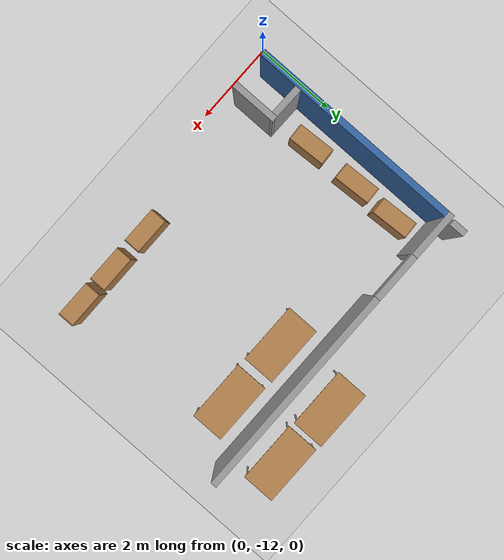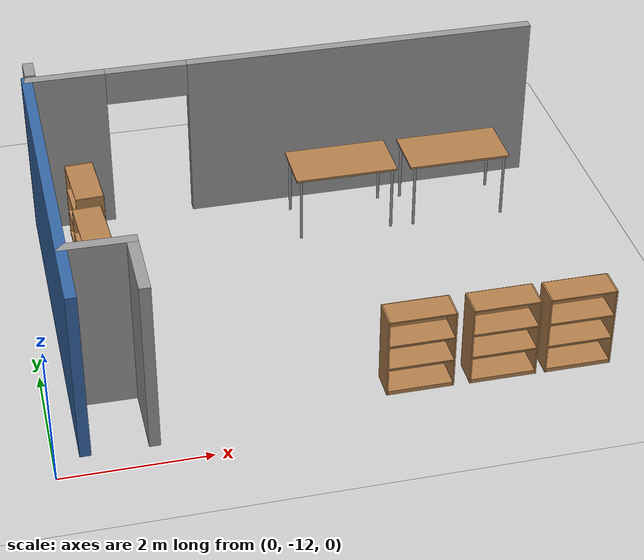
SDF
<sdf version="1.7">
 <world name="default">
  <model name="ground_plane">
   <static>1</static>
   <link name="link">
    <collision name="collision">
     <geometry><plane><normal>0 0 1</normal><size>100 100</size></plane></geometry>
     <surface>
      <contact><collide_bitmask>65535</collide_bitmask></contact>
      <friction><ode><mu>100</mu><mu2>50</mu2></ode></friction>
     </surface>
    </collision>
    <visual name="visual">
     <cast_shadows>0</cast_shadows>
     <geometry><plane><normal>0 0 1</normal><size>100 100</size></plane></geometry>
     <material>
      <script><uri>file://media/materials/scripts/gazebo.material</uri><name>Gazebo/Grey</name></script>
     </material>
    </visual>
   </link>
  </model>
  <model name="office_indoor_centered">
   <pose>8.45773 -9.64315 0 0 -0 0</pose>
   <link name="Wall_119">
    <collision name="Wall_119_Collision">
     <geometry><box><size>0.364986 0.15 2.5</size></box></geometry>
     <pose>0 0 1.25 0 -0 0</pose>
    </collision>
    <visual name="Wall_119_Visual">
     <pose>0 0 1.25 0 -0 0</pose>
     <geometry><box><size>0.364986 0.15 2.5</size></box></geometry>
     <material>
      <script><uri>file://media/materials/scripts/gazebo.material</uri><name>Gazebo/Grey</name></script>
      <ambient>1 1 1 1</ambient>
     </material>
     <meta><layer>0</layer></meta>
    </visual>
    <pose>-7.99429 3.45026 0 0 -0 -1.5608</pose>
   </link>
   <link name="Wall_37">
    <pose>-4.37835 3.15504 0 0 -0 0</pose>
    <visual name="Wall_37_Visual_0">
     <pose>-3.16264 0 1.25 0 -0 0</pose>
     <geometry><box><size>1.17472 0.15 2.5</size></box></geometry>
     <material>
      <script><uri>file://media/materials/scripts/gazebo.material</uri><name>Gazebo/Grey</name></script>
      <ambient>1 1 1 1</ambient>
     </material>
     <meta><layer>0</layer></meta>
    </visual>
    <collision name="Wall_37_Collision_0">
     <geometry><box><size>1.17472 0.15 2.5</size></box></geometry>
     <pose>-3.16264 0 1.25 0 -0 0</pose>
    </collision>
    <visual name="Wall_37_Visual_1">
     <pose>1.17415 0 1.25 0 -0 0</pose>
     <geometry><box><size>5.15171 0.15 2.5</size></box></geometry>
     <material>
      <script><uri>file://media/materials/scripts/gazebo.material</uri><name>Gazebo/Grey</name></script>
      <ambient>1 1 1 1</ambient>
     </material>
     <meta><layer>0</layer></meta>
    </visual>
    <collision name="Wall_37_Collision_1">
     <geometry><box><size>5.15171 0.15 2.5</size></box></geometry>
     <pose>1.17415 0 1.25 0 -0 0</pose>
    </collision>
    <visual name="Wall_37_Visual_2">
     <pose>-1.98849 0 2.25 0 -0 0</pose>
     <geometry><box><size>1.17357 0.15 0.5</size></box></geometry>
     <material>
      <script><uri>file://media/materials/scripts/gazebo.material</uri><name>Gazebo/Grey</name></script>
      <ambient>1 1 1 1</ambient>
     </material>
     <meta><layer>0</layer></meta>
    </visual>
    <collision name="Wall_37_Collision_2">
     <geometry><box><size>1.17357 0.15 0.5</size></box></geometry>
     <pose>-1.98849 0 2.25 0 -0 0</pose>
    </collision>
   </link>
   <link name="Wall_41">
    <collision name="Wall_41_Collision">
     <geometry><box><size>5.25 0.15 2.5</size></box></geometry>
     <pose>0 0 1.25 0 -0 0</pose>
    </collision>
    <visual name="Wall_41_Visual">
     <pose>0 0 1.25 0 -0 0</pose>
     <geometry><box><size>5.25 0.15 2.5</size></box></geometry>
     <material>
      <script><uri>file://media/materials/scripts/gazebo.material</uri><name>Gazebo/Grey</name></script>
      <ambient>0.203922 0.396078 0.643137 1</ambient>
     </material>
     <meta><layer>0</layer></meta>
    </visual>
    <pose>-8.05354 0.605094 0 0 -0 -1.57087</pose>
   </link>
   <link name="Wall_51">
    <collision name="Wall_51_Collision">
     <geometry><box><size>1.12149 0.15 2.5</size></box></geometry>
     <pose>0 0 1.25 0 -0 0</pose>
    </collision>
    <visual name="Wall_51_Visual">
     <pose>0 0 1.25 0 -0 0</pose>
     <geometry><box><size>1.12149 0.15 2.5</size></box></geometry>
     <material>
      <script><uri>file://media/materials/scripts/gazebo.material</uri><name>Gazebo/Grey</name></script>
      <ambient>1 1 1 1</ambient>
     </material>
     <meta><layer>0</layer></meta>
    </visual>
    <pose>-7.1714 -1.46267 0 0 -0 1.5708</pose>
   </link>
   <link name="Wall_52">
    <collision name="Wall_52_Collision">
     <geometry><box><size>1.01742 0.15 2.5</size></box></geometry>
     <pose>0 0 1.25 0 -0 0</pose>
    </collision>
    <visual name="Wall_52_Visual">
     <pose>0 0 1.25 0 -0 0</pose>
     <geometry><box><size>1.01742 0.15 2.5</size></box></geometry>
     <material>
      <script><uri>file://media/materials/scripts/gazebo.material</uri><name>Gazebo/Grey</name></script>
      <ambient>1 1 1 1</ambient>
     </material>
     <meta><layer>0</layer></meta>
    </visual>
    <pose>-7.6051 -0.971145 0 0 -0 3.12826</pose>
   </link>
   <static>1</static>
  </model>
  <model name="table_20">
   <static>1</static>
   <link name="link">
    <collision name="surface">
     <pose>0 0 1 0 -0 0</pose>
     <geometry><box><size>1.5 0.8 0.03</size></box></geometry>
     <surface><friction><ode><mu>0.6</mu><mu2>0.6</mu2></ode></friction></surface>
    </collision>
    <visual name="visual1">
     <pose>0 0 1 0 -0 0</pose>
     <geometry><box><size>1.5 0.8 0.03</size></box></geometry>
     <material>
      <script><uri>file://media/materials/scripts/gazebo.material</uri><name>Gazebo/Wood</name></script>
     </material>
    </visual>
    <collision name="collision_front_left_leg">
     <pose>0.68 0.38 0.5 0 -0 0</pose>
     <geometry><cylinder><radius>0.02</radius><length>1</length></cylinder></geometry>
    </collision>
    <visual name="visual_front_left_leg">
     <pose>0.68 0.38 0.5 0 -0 0</pose>
     <geometry><cylinder><radius>0.02</radius><length>1</length></cylinder></geometry>
     <material>
      <script><uri>file://media/materials/scripts/gazebo.material</uri><name>Gazebo/Grey</name></script>
     </material>
    </visual>
    <collision name="collision_front_right_leg">
     <pose>0.68 -0.38 0.5 0 -0 0</pose>
     <geometry><cylinder><radius>0.02</radius><length>1</length></cylinder></geometry>
    </collision>
    <visual name="visual_front_right_leg">
     <pose>0.68 -0.38 0.5 0 -0 0</pose>
     <geometry><cylinder><radius>0.02</radius><length>1</length></cylinder></geometry>
     <material>
      <script><uri>file://media/materials/scripts/gazebo.material</uri><name>Gazebo/Grey</name></script>
     </material>
    </visual>
    <collision name="collision_back_right_leg">
     <pose>-0.68 -0.38 0.5 0 -0 0</pose>
     <geometry><cylinder><radius>0.02</radius><length>1</length></cylinder></geometry>
    </collision>
    <visual name="visual_back_right_leg">
     <pose>-0.68 -0.38 0.5 0 -0 0</pose>
     <geometry><cylinder><radius>0.02</radius><length>1</length></cylinder></geometry>
     <material>
      <script><uri>file://media/materials/scripts/gazebo.material</uri><name>Gazebo/Grey</name></script>
     </material>
    </visual>
    <collision name="collision_back_left_leg">
     <pose>-0.68 0.38 0.5 0 -0 0</pose>
     <geometry><cylinder><radius>0.02</radius><length>1</length></cylinder></geometry>
    </collision>
    <visual name="visual_back_left_leg">
     <pose>-0.68 0.38 0.5 0 -0 0</pose>
     <geometry><cylinder><radius>0.02</radius><length>1</length></cylinder></geometry>
     <material>
      <script><uri>file://media/materials/scripts/gazebo.material</uri><name>Gazebo/Grey</name></script>
     </material>
    </visual>
   </link>
   <pose>6.47913 -7.29137 0 0 -0 0</pose>
  </model>
  <model name="table_21">
   <static>1</static>
   <link name="link">
    <collision name="surface">
     <pose>0 0 1 0 -0 0</pose>
     <geometry><box><size>1.5 0.8 0.03</size></box></geometry>
     <surface><friction><ode><mu>0.6</mu><mu2>0.6</mu2></ode></friction></surface>
    </collision>
    <visual name="visual1">
     <pose>0 0 1 0 -0 0</pose>
     <geometry><box><size>1.5 0.8 0.03</size></box></geometry>
     <material>
      <script><uri>file://media/materials/scripts/gazebo.material</uri><name>Gazebo/Wood</name></script>
     </material>
    </visual>
    <collision name="collision_front_left_leg">
     <pose>0.68 0.38 0.5 0 -0 0</pose>
     <geometry><cylinder><radius>0.02</radius><length>1</length></cylinder></geometry>
    </collision>
    <visual name="visual_front_left_leg">
     <pose>0.68 0.38 0.5 0 -0 0</pose>
     <geometry><cylinder><radius>0.02</radius><length>1</length></cylinder></geometry>
     <material>
      <script><uri>file://media/materials/scripts/gazebo.material</uri><name>Gazebo/Grey</name></script>
     </material>
    </visual>
    <collision name="collision_front_right_leg">
     <pose>0.68 -0.38 0.5 0 -0 0</pose>
     <geometry><cylinder><radius>0.02</radius><length>1</length></cylinder></geometry>
    </collision>
    <visual name="visual_front_right_leg">
     <pose>0.68 -0.38 0.5 0 -0 0</pose>
     <geometry><cylinder><radius>0.02</radius><length>1</length></cylinder></geometry>
     <material>
      <script><uri>file://media/materials/scripts/gazebo.material</uri><name>Gazebo/Grey</name></script>
     </material>
    </visual>
    <collision name="collision_back_right_leg">
     <pose>-0.68 -0.38 0.5 0 -0 0</pose>
     <geometry><cylinder><radius>0.02</radius><length>1</length></cylinder></geometry>
    </collision>
    <visual name="visual_back_right_leg">
     <pose>-0.68 -0.38 0.5 0 -0 0</pose>
     <geometry><cylinder><radius>0.02</radius><length>1</length></cylinder></geometry>
     <material>
      <script><uri>file://media/materials/scripts/gazebo.material</uri><name>Gazebo/Grey</name></script>
     </material>
    </visual>
    <collision name="collision_back_left_leg">
     <pose>-0.68 0.38 0.5 0 -0 0</pose>
     <geometry><cylinder><radius>0.02</radius><length>1</length></cylinder></geometry>
    </collision>
    <visual name="visual_back_left_leg">
     <pose>-0.68 0.38 0.5 0 -0 0</pose>
     <geometry><cylinder><radius>0.02</radius><length>1</length></cylinder></geometry>
     <material>
      <script><uri>file://media/materials/scripts/gazebo.material</uri><name>Gazebo/Grey</name></script>
     </material>
    </visual>
   </link>
   <pose>4.78093 -7.27118 0 0 -0 0</pose>
  </model>
  <model name="table_24">
   <static>1</static>
   <link name="link">
    <collision name="surface">
     <pose>0 0 1 0 -0 0</pose>
     <geometry><box><size>1.5 0.8 0.03</size></box></geometry>
     <surface><friction><ode><mu>0.6</mu><mu2>0.6</mu2></ode></friction></surface>
    </collision>
    <visual name="visual1">
     <pose>0 0 1 0 -0 0</pose>
     <geometry><box><size>1.5 0.8 0.03</size></box></geometry>
     <material>
      <script><uri>file://media/materials/scripts/gazebo.material</uri><name>Gazebo/Wood</name></script>
     </material>
    </visual>
    <collision name="collision_front_left_leg">
     <pose>0.68 0.38 0.5 0 -0 0</pose>
     <geometry><cylinder><radius>0.02</radius><length>1</length></cylinder></geometry>
    </collision>
    <visual name="visual_front_left_leg">
     <pose>0.68 0.38 0.5 0 -0 0</pose>
     <geometry><cylinder><radius>0.02</radius><length>1</length></cylinder></geometry>
     <material>
      <script><uri>file://media/materials/scripts/gazebo.material</uri><name>Gazebo/Grey</name></script>
     </material>
    </visual>
    <collision name="collision_front_right_leg">
     <pose>0.68 -0.38 0.5 0 -0 0</pose>
     <geometry><cylinder><radius>0.02</radius><length>1</length></cylinder></geometry>
    </collision>
    <visual name="visual_front_right_leg">
     <pose>0.68 -0.38 0.5 0 -0 0</pose>
     <geometry><cylinder><radius>0.02</radius><length>1</length></cylinder></geometry>
     <material>
      <script><uri>file://media/materials/scripts/gazebo.material</uri><name>Gazebo/Grey</name></script>
     </material>
    </visual>
    <collision name="collision_back_right_leg">
     <pose>-0.68 -0.38 0.5 0 -0 0</pose>
     <geometry><cylinder><radius>0.02</radius><length>1</length></cylinder></geometry>
    </collision>
    <visual name="visual_back_right_leg">
     <pose>-0.68 -0.38 0.5 0 -0 0</pose>
     <geometry><cylinder><radius>0.02</radius><length>1</length></cylinder></geometry>
     <material>
      <script><uri>file://media/materials/scripts/gazebo.material</uri><name>Gazebo/Grey</name></script>
     </material>
    </visual>
    <collision name="collision_back_left_leg">
     <pose>-0.68 0.38 0.5 0 -0 0</pose>
     <geometry><cylinder><radius>0.02</radius><length>1</length></cylinder></geometry>
    </collision>
    <visual name="visual_back_left_leg">
     <pose>-0.68 0.38 0.5 0 -0 0</pose>
     <geometry><cylinder><radius>0.02</radius><length>1</length></cylinder></geometry>
     <material>
      <script><uri>file://media/materials/scripts/gazebo.material</uri><name>Gazebo/Grey</name></script>
     </material>
    </visual>
   </link>
   <pose>6.75369 -5.54528 0 0 -0 0</pose>
  </model>
  <model name="table_25">
   <static>1</static>
   <link name="link">
    <collision name="surface">
     <pose>0 0 1 0 -0 0</pose>
     <geometry><box><size>1.5 0.8 0.03</size></box></geometry>
     <surface><friction><ode><mu>0.6</mu><mu2>0.6</mu2></ode></friction></surface>
    </collision>
    <visual name="visual1">
     <pose>0 0 1 0 -0 0</pose>
     <geometry><box><size>1.5 0.8 0.03</size></box></geometry>
     <material>
      <script><uri>file://media/materials/scripts/gazebo.material</uri><name>Gazebo/Wood</name></script>
     </material>
    </visual>
    <collision name="collision_front_left_leg">
     <pose>0.68 0.38 0.5 0 -0 0</pose>
     <geometry><cylinder><radius>0.02</radius><length>1</length></cylinder></geometry>
    </collision>
    <visual name="visual_front_left_leg">
     <pose>0.68 0.38 0.5 0 -0 0</pose>
     <geometry><cylinder><radius>0.02</radius><length>1</length></cylinder></geometry>
     <material>
      <script><uri>file://media/materials/scripts/gazebo.material</uri><name>Gazebo/Grey</name></script>
     </material>
    </visual>
    <collision name="collision_front_right_leg">
     <pose>0.68 -0.38 0.5 0 -0 0</pose>
     <geometry><cylinder><radius>0.02</radius><length>1</length></cylinder></geometry>
    </collision>
    <visual name="visual_front_right_leg">
     <pose>0.68 -0.38 0.5 0 -0 0</pose>
     <geometry><cylinder><radius>0.02</radius><length>1</length></cylinder></geometry>
     <material>
      <script><uri>file://media/materials/scripts/gazebo.material</uri><name>Gazebo/Grey</name></script>
     </material>
    </visual>
    <collision name="collision_back_right_leg">
     <pose>-0.68 -0.38 0.5 0 -0 0</pose>
     <geometry><cylinder><radius>0.02</radius><length>1</length></cylinder></geometry>
    </collision>
    <visual name="visual_back_right_leg">
     <pose>-0.68 -0.38 0.5 0 -0 0</pose>
     <geometry><cylinder><radius>0.02</radius><length>1</length></cylinder></geometry>
     <material>
      <script><uri>file://media/materials/scripts/gazebo.material</uri><name>Gazebo/Grey</name></script>
     </material>
    </visual>
    <collision name="collision_back_left_leg">
     <pose>-0.68 0.38 0.5 0 -0 0</pose>
     <geometry><cylinder><radius>0.02</radius><length>1</length></cylinder></geometry>
    </collision>
    <visual name="visual_back_left_leg">
     <pose>-0.68 0.38 0.5 0 -0 0</pose>
     <geometry><cylinder><radius>0.02</radius><length>1</length></cylinder></geometry>
     <material>
      <script><uri>file://media/materials/scripts/gazebo.material</uri><name>Gazebo/Grey</name></script>
     </material>
    </visual>
   </link>
   <pose>5.1313 -5.51044 0 0 -0 0</pose>
  </model>
  <model name="bookshelf_3">
   <static>1</static>
   <link name="link">
    <inertial><mass>1</mass></inertial>
    <collision name="collision_back">
     <pose>0 0.005 0.6 0 -0 0</pose>
     <geometry><box><size>0.9 0.01 1.2</size></box></geometry>
    </collision>
    <visual name="visual1">
     <pose>0 0.005 0.6 0 -0 0</pose>
     <geometry><box><size>0.9 0.01 1.2</size></box></geometry>
     <material>
      <script><uri>file://media/materials/scripts/gazebo.material</uri><name>Gazebo/Wood</name></script>
     </material>
    </visual>
    <collision name="left_side">
     <pose>0.45 -0.195 0.6 0 -0 0</pose>
     <geometry><box><size>0.02 0.4 1.2</size></box></geometry>
    </collision>
    <visual name="visual2">
     <pose>0.45 -0.195 0.6 0 -0 0</pose>
     <geometry><box><size>0.02 0.4 1.2</size></box></geometry>
     <material>
      <script><uri>file://media/materials/scripts/gazebo.material</uri><name>Gazebo/Wood</name></script>
     </material>
    </visual>
    <collision name="right_side">
     <pose>-0.45 -0.195 0.6 0 -0 0</pose>
     <geometry><box><size>0.02 0.4 1.2</size></box></geometry>
    </collision>
    <visual name="visual3">
     <pose>-0.45 -0.195 0.6 0 -0 0</pose>
     <geometry><box><size>0.02 0.4 1.2</size></box></geometry>
     <material>
      <script><uri>file://media/materials/scripts/gazebo.material</uri><name>Gazebo/Wood</name></script>
     </material>
    </visual>
    <collision name="bottom">
     <pose>0 -0.195 0.03 0 -0 0</pose>
     <geometry><box><size>0.88 0.4 0.06</size></box></geometry>
    </collision>
    <visual name="visual4">
     <pose>0 -0.195 0.03 0 -0 0</pose>
     <geometry><box><size>0.88 0.4 0.06</size></box></geometry>
     <material>
      <script><uri>file://media/materials/scripts/gazebo.material</uri><name>Gazebo/Wood</name></script>
     </material>
    </visual>
    <collision name="top">
     <pose>0 -0.195 1.19 0 -0 0</pose>
     <geometry><box><size>0.88 0.4 0.02</size></box></geometry>
    </collision>
    <visual name="visual5">
     <pose>0 -0.195 1.19 0 -0 0</pose>
     <geometry><box><size>0.88 0.4 0.02</size></box></geometry>
     <material>
      <script><uri>file://media/materials/scripts/gazebo.material</uri><name>Gazebo/Wood</name></script>
     </material>
    </visual>
    <collision name="low_shelf">
     <pose>0 -0.195 0.43 0 -0 0</pose>
     <geometry><box><size>0.88 0.4 0.02</size></box></geometry>
    </collision>
    <visual name="visual6">
     <pose>0 -0.195 0.43 0 -0 0</pose>
     <geometry><box><size>0.88 0.4 0.02</size></box></geometry>
     <material>
      <script><uri>file://media/materials/scripts/gazebo.material</uri><name>Gazebo/Wood</name></script>
     </material>
    </visual>
    <collision name="high_shelf">
     <pose>0 -0.195 0.8 0 -0 0</pose>
     <geometry><box><size>0.88 0.4 0.02</size></box></geometry>
    </collision>
    <visual name="visual7">
     <pose>0 -0.195 0.8 0 -0 0</pose>
     <geometry><box><size>0.88 0.4 0.02</size></box></geometry>
     <material>
      <script><uri>file://media/materials/scripts/gazebo.material</uri><name>Gazebo/Wood</name></script>
     </material>
    </visual>
   </link>
   <pose>7.02533 -10.9992 0 0 -0 0</pose>
  </model>
  <model name="bookshelf_4">
   <static>1</static>
   <link name="link">
    <inertial><mass>1</mass></inertial>
    <collision name="collision_back">
     <pose>0 0.005 0.6 0 -0 0</pose>
     <geometry><box><size>0.9 0.01 1.2</size></box></geometry>
    </collision>
    <visual name="visual1">
     <pose>0 0.005 0.6 0 -0 0</pose>
     <geometry><box><size>0.9 0.01 1.2</size></box></geometry>
     <material>
      <script><uri>file://media/materials/scripts/gazebo.material</uri><name>Gazebo/Wood</name></script>
     </material>
    </visual>
    <collision name="left_side">
     <pose>0.45 -0.195 0.6 0 -0 0</pose>
     <geometry><box><size>0.02 0.4 1.2</size></box></geometry>
    </collision>
    <visual name="visual2">
     <pose>0.45 -0.195 0.6 0 -0 0</pose>
     <geometry><box><size>0.02 0.4 1.2</size></box></geometry>
     <material>
      <script><uri>file://media/materials/scripts/gazebo.material</uri><name>Gazebo/Wood</name></script>
     </material>
    </visual>
    <collision name="right_side">
     <pose>-0.45 -0.195 0.6 0 -0 0</pose>
     <geometry><box><size>0.02 0.4 1.2</size></box></geometry>
    </collision>
    <visual name="visual3">
     <pose>-0.45 -0.195 0.6 0 -0 0</pose>
     <geometry><box><size>0.02 0.4 1.2</size></box></geometry>
     <material>
      <script><uri>file://media/materials/scripts/gazebo.material</uri><name>Gazebo/Wood</name></script>
     </material>
    </visual>
    <collision name="bottom">
     <pose>0 -0.195 0.03 0 -0 0</pose>
     <geometry><box><size>0.88 0.4 0.06</size></box></geometry>
    </collision>
    <visual name="visual4">
     <pose>0 -0.195 0.03 0 -0 0</pose>
     <geometry><box><size>0.88 0.4 0.06</size></box></geometry>
     <material>
      <script><uri>file://media/materials/scripts/gazebo.material</uri><name>Gazebo/Wood</name></script>
     </material>
    </visual>
    <collision name="top">
     <pose>0 -0.195 1.19 0 -0 0</pose>
     <geometry><box><size>0.88 0.4 0.02</size></box></geometry>
    </collision>
    <visual name="visual5">
     <pose>0 -0.195 1.19 0 -0 0</pose>
     <geometry><box><size>0.88 0.4 0.02</size></box></geometry>
     <material>
      <script><uri>file://media/materials/scripts/gazebo.material</uri><name>Gazebo/Wood</name></script>
     </material>
    </visual>
    <collision name="low_shelf">
     <pose>0 -0.195 0.43 0 -0 0</pose>
     <geometry><box><size>0.88 0.4 0.02</size></box></geometry>
    </collision>
    <visual name="visual6">
     <pose>0 -0.195 0.43 0 -0 0</pose>
     <geometry><box><size>0.88 0.4 0.02</size></box></geometry>
     <material>
      <script><uri>file://media/materials/scripts/gazebo.material</uri><name>Gazebo/Wood</name></script>
     </material>
    </visual>
    <collision name="high_shelf">
     <pose>0 -0.195 0.8 0 -0 0</pose>
     <geometry><box><size>0.88 0.4 0.02</size></box></geometry>
    </collision>
    <visual name="visual7">
     <pose>0 -0.195 0.8 0 -0 0</pose>
     <geometry><box><size>0.88 0.4 0.02</size></box></geometry>
     <material>
      <script><uri>file://media/materials/scripts/gazebo.material</uri><name>Gazebo/Wood</name></script>
     </material>
    </visual>
   </link>
   <pose>5.9855 -10.993 0 0 -0 0</pose>
  </model>
  <model name="bookshelf_5">
   <static>1</static>
   <link name="link">
    <inertial><mass>1</mass></inertial>
    <collision name="collision_back">
     <pose>0 0.005 0.6 0 -0 0</pose>
     <geometry><box><size>0.9 0.01 1.2</size></box></geometry>
    </collision>
    <visual name="visual1">
     <pose>0 0.005 0.6 0 -0 0</pose>
     <geometry><box><size>0.9 0.01 1.2</size></box></geometry>
     <material>
      <script><uri>file://media/materials/scripts/gazebo.material</uri><name>Gazebo/Wood</name></script>
     </material>
    </visual>
    <collision name="left_side">
     <pose>0.45 -0.195 0.6 0 -0 0</pose>
     <geometry><box><size>0.02 0.4 1.2</size></box></geometry>
    </collision>
    <visual name="visual2">
     <pose>0.45 -0.195 0.6 0 -0 0</pose>
     <geometry><box><size>0.02 0.4 1.2</size></box></geometry>
     <material>
      <script><uri>file://media/materials/scripts/gazebo.material</uri><name>Gazebo/Wood</name></script>
     </material>
    </visual>
    <collision name="right_side">
     <pose>-0.45 -0.195 0.6 0 -0 0</pose>
     <geometry><box><size>0.02 0.4 1.2</size></box></geometry>
    </collision>
    <visual name="visual3">
     <pose>-0.45 -0.195 0.6 0 -0 0</pose>
     <geometry><box><size>0.02 0.4 1.2</size></box></geometry>
     <material>
      <script><uri>file://media/materials/scripts/gazebo.material</uri><name>Gazebo/Wood</name></script>
     </material>
    </visual>
    <collision name="bottom">
     <pose>0 -0.195 0.03 0 -0 0</pose>
     <geometry><box><size>0.88 0.4 0.06</size></box></geometry>
    </collision>
    <visual name="visual4">
     <pose>0 -0.195 0.03 0 -0 0</pose>
     <geometry><box><size>0.88 0.4 0.06</size></box></geometry>
     <material>
      <script><uri>file://media/materials/scripts/gazebo.material</uri><name>Gazebo/Wood</name></script>
     </material>
    </visual>
    <collision name="top">
     <pose>0 -0.195 1.19 0 -0 0</pose>
     <geometry><box><size>0.88 0.4 0.02</size></box></geometry>
    </collision>
    <visual name="visual5">
     <pose>0 -0.195 1.19 0 -0 0</pose>
     <geometry><box><size>0.88 0.4 0.02</size></box></geometry>
     <material>
      <script><uri>file://media/materials/scripts/gazebo.material</uri><name>Gazebo/Wood</name></script>
     </material>
    </visual>
    <collision name="low_shelf">
     <pose>0 -0.195 0.43 0 -0 0</pose>
     <geometry><box><size>0.88 0.4 0.02</size></box></geometry>
    </collision>
    <visual name="visual6">
     <pose>0 -0.195 0.43 0 -0 0</pose>
     <geometry><box><size>0.88 0.4 0.02</size></box></geometry>
     <material>
      <script><uri>file://media/materials/scripts/gazebo.material</uri><name>Gazebo/Wood</name></script>
     </material>
    </visual>
    <collision name="high_shelf">
     <pose>0 -0.195 0.8 0 -0 0</pose>
     <geometry><box><size>0.88 0.4 0.02</size></box></geometry>
    </collision>
    <visual name="visual7">
     <pose>0 -0.195 0.8 0 -0 0</pose>
     <geometry><box><size>0.88 0.4 0.02</size></box></geometry>
     <material>
      <script><uri>file://media/materials/scripts/gazebo.material</uri><name>Gazebo/Wood</name></script>
     </material>
    </visual>
   </link>
   <pose>4.85412 -10.9828 0 0 -0 0</pose>
  </model>
  <model name="bookshelf_9_clone_1">
   <static>1</static>
   <link name="link">
    <inertial><mass>1</mass></inertial>
    <collision name="collision_back">
     <pose>0 0.005 0.6 0 -0 0</pose>
     <geometry><box><size>0.9 0.01 1.2</size></box></geometry>
    </collision>
    <visual name="visual1">
     <pose>0 0.005 0.6 0 -0 0</pose>
     <geometry><box><size>0.9 0.01 1.2</size></box></geometry>
     <material>
      <script><uri>file://media/materials/scripts/gazebo.material</uri><name>Gazebo/Wood</name></script>
     </material>
    </visual>
    <collision name="left_side">
     <pose>0.45 -0.195 0.6 0 -0 0</pose>
     <geometry><box><size>0.02 0.4 1.2</size></box></geometry>
    </collision>
    <visual name="visual2">
     <pose>0.45 -0.195 0.6 0 -0 0</pose>
     <geometry><box><size>0.02 0.4 1.2</size></box></geometry>
     <material>
      <script><uri>file://media/materials/scripts/gazebo.material</uri><name>Gazebo/Wood</name></script>
     </material>
    </visual>
    <collision name="right_side">
     <pose>-0.45 -0.195 0.6 0 -0 0</pose>
     <geometry><box><size>0.02 0.4 1.2</size></box></geometry>
    </collision>
    <visual name="visual3">
     <pose>-0.45 -0.195 0.6 0 -0 0</pose>
     <geometry><box><size>0.02 0.4 1.2</size></box></geometry>
     <material>
      <script><uri>file://media/materials/scripts/gazebo.material</uri><name>Gazebo/Wood</name></script>
     </material>
    </visual>
    <collision name="bottom">
     <pose>0 -0.195 0.03 0 -0 0</pose>
     <geometry><box><size>0.88 0.4 0.06</size></box></geometry>
    </collision>
    <visual name="visual4">
     <pose>0 -0.195 0.03 0 -0 0</pose>
     <geometry><box><size>0.88 0.4 0.06</size></box></geometry>
     <material>
      <script><uri>file://media/materials/scripts/gazebo.material</uri><name>Gazebo/Wood</name></script>
     </material>
    </visual>
    <collision name="top">
     <pose>0 -0.195 1.19 0 -0 0</pose>
     <geometry><box><size>0.88 0.4 0.02</size></box></geometry>
    </collision>
    <visual name="visual5">
     <pose>0 -0.195 1.19 0 -0 0</pose>
     <geometry><box><size>0.88 0.4 0.02</size></box></geometry>
     <material>
      <script><uri>file://media/materials/scripts/gazebo.material</uri><name>Gazebo/Wood</name></script>
     </material>
    </visual>
    <collision name="low_shelf">
     <pose>0 -0.195 0.43 0 -0 0</pose>
     <geometry><box><size>0.88 0.4 0.02</size></box></geometry>
    </collision>
    <visual name="visual6">
     <pose>0 -0.195 0.43 0 -0 0</pose>
     <geometry><box><size>0.88 0.4 0.02</size></box></geometry>
     <material>
      <script><uri>file://media/materials/scripts/gazebo.material</uri><name>Gazebo/Wood</name></script>
     </material>
    </visual>
    <collision name="high_shelf">
     <pose>0 -0.195 0.8 0 -0 0</pose>
     <geometry><box><size>0.88 0.4 0.02</size></box></geometry>
    </collision>
    <visual name="visual7">
     <pose>0 -0.195 0.8 0 -0 0</pose>
     <geometry><box><size>0.88 0.4 0.02</size></box></geometry>
     <material>
      <script><uri>file://media/materials/scripts/gazebo.material</uri><name>Gazebo/Wood</name></script>
     </material>
    </visual>
   </link>
   <pose>1.21818 -7.23589 0 0 0 -1.51799</pose>
  </model>
  <model name="bookshelf_9_clone_2">
   <static>1</static>
   <link name="link">
    <inertial><mass>1</mass></inertial>
    <collision name="collision_back">
     <pose>0 0.005 0.6 0 -0 0</pose>
     <geometry><box><size>0.9 0.01 1.2</size></box></geometry>
    </collision>
    <visual name="visual1">
     <pose>0 0.005 0.6 0 -0 0</pose>
     <geometry><box><size>0.9 0.01 1.2</size></box></geometry>
     <material>
      <script><uri>file://media/materials/scripts/gazebo.material</uri><name>Gazebo/Wood</name></script>
     </material>
    </visual>
    <collision name="left_side">
     <pose>0.45 -0.195 0.6 0 -0 0</pose>
     <geometry><box><size>0.02 0.4 1.2</size></box></geometry>
    </collision>
    <visual name="visual2">
     <pose>0.45 -0.195 0.6 0 -0 0</pose>
     <geometry><box><size>0.02 0.4 1.2</size></box></geometry>
     <material>
      <script><uri>file://media/materials/scripts/gazebo.material</uri><name>Gazebo/Wood</name></script>
     </material>
    </visual>
    <collision name="right_side">
     <pose>-0.45 -0.195 0.6 0 -0 0</pose>
     <geometry><box><size>0.02 0.4 1.2</size></box></geometry>
    </collision>
    <visual name="visual3">
     <pose>-0.45 -0.195 0.6 0 -0 0</pose>
     <geometry><box><size>0.02 0.4 1.2</size></box></geometry>
     <material>
      <script><uri>file://media/materials/scripts/gazebo.material</uri><name>Gazebo/Wood</name></script>
     </material>
    </visual>
    <collision name="bottom">
     <pose>0 -0.195 0.03 0 -0 0</pose>
     <geometry><box><size>0.88 0.4 0.06</size></box></geometry>
    </collision>
    <visual name="visual4">
     <pose>0 -0.195 0.03 0 -0 0</pose>
     <geometry><box><size>0.88 0.4 0.06</size></box></geometry>
     <material>
      <script><uri>file://media/materials/scripts/gazebo.material</uri><name>Gazebo/Wood</name></script>
     </material>
    </visual>
    <collision name="top">
     <pose>0 -0.195 1.19 0 -0 0</pose>
     <geometry><box><size>0.88 0.4 0.02</size></box></geometry>
    </collision>
    <visual name="visual5">
     <pose>0 -0.195 1.19 0 -0 0</pose>
     <geometry><box><size>0.88 0.4 0.02</size></box></geometry>
     <material>
      <script><uri>file://media/materials/scripts/gazebo.material</uri><name>Gazebo/Wood</name></script>
     </material>
    </visual>
    <collision name="low_shelf">
     <pose>0 -0.195 0.43 0 -0 0</pose>
     <geometry><box><size>0.88 0.4 0.02</size></box></geometry>
    </collision>
    <visual name="visual6">
     <pose>0 -0.195 0.43 0 -0 0</pose>
     <geometry><box><size>0.88 0.4 0.02</size></box></geometry>
     <material>
      <script><uri>file://media/materials/scripts/gazebo.material</uri><name>Gazebo/Wood</name></script>
     </material>
    </visual>
    <collision name="high_shelf">
     <pose>0 -0.195 0.8 0 -0 0</pose>
     <geometry><box><size>0.88 0.4 0.02</size></box></geometry>
    </collision>
    <visual name="visual7">
     <pose>0 -0.195 0.8 0 -0 0</pose>
     <geometry><box><size>0.88 0.4 0.02</size></box></geometry>
     <material>
      <script><uri>file://media/materials/scripts/gazebo.material</uri><name>Gazebo/Wood</name></script>
     </material>
    </visual>
   </link>
   <pose>1.19196 -8.36018 0 0 0 -1.51799</pose>
  </model>
  <model name="bookshelf_9_clone_3">
   <static>1</static>
   <link name="link">
    <inertial><mass>1</mass></inertial>
    <collision name="collision_back">
     <pose>0 0.005 0.6 0 -0 0</pose>
     <geometry><box><size>0.9 0.01 1.2</size></box></geometry>
    </collision>
    <visual name="visual1">
     <pose>0 0.005 0.6 0 -0 0</pose>
     <geometry><box><size>0.9 0.01 1.2</size></box></geometry>
     <material>
      <script><uri>file://media/materials/scripts/gazebo.material</uri><name>Gazebo/Wood</name></script>
     </material>
    </visual>
    <collision name="left_side">
     <pose>0.45 -0.195 0.6 0 -0 0</pose>
     <geometry><box><size>0.02 0.4 1.2</size></box></geometry>
    </collision>
    <visual name="visual2">
     <pose>0.45 -0.195 0.6 0 -0 0</pose>
     <geometry><box><size>0.02 0.4 1.2</size></box></geometry>
     <material>
      <script><uri>file://media/materials/scripts/gazebo.material</uri><name>Gazebo/Wood</name></script>
     </material>
    </visual>
    <collision name="right_side">
     <pose>-0.45 -0.195 0.6 0 -0 0</pose>
     <geometry><box><size>0.02 0.4 1.2</size></box></geometry>
    </collision>
    <visual name="visual3">
     <pose>-0.45 -0.195 0.6 0 -0 0</pose>
     <geometry><box><size>0.02 0.4 1.2</size></box></geometry>
     <material>
      <script><uri>file://media/materials/scripts/gazebo.material</uri><name>Gazebo/Wood</name></script>
     </material>
    </visual>
    <collision name="bottom">
     <pose>0 -0.195 0.03 0 -0 0</pose>
     <geometry><box><size>0.88 0.4 0.06</size></box></geometry>
    </collision>
    <visual name="visual4">
     <pose>0 -0.195 0.03 0 -0 0</pose>
     <geometry><box><size>0.88 0.4 0.06</size></box></geometry>
     <material>
      <script><uri>file://media/materials/scripts/gazebo.material</uri><name>Gazebo/Wood</name></script>
     </material>
    </visual>
    <collision name="top">
     <pose>0 -0.195 1.19 0 -0 0</pose>
     <geometry><box><size>0.88 0.4 0.02</size></box></geometry>
    </collision>
    <visual name="visual5">
     <pose>0 -0.195 1.19 0 -0 0</pose>
     <geometry><box><size>0.88 0.4 0.02</size></box></geometry>
     <material>
      <script><uri>file://media/materials/scripts/gazebo.material</uri><name>Gazebo/Wood</name></script>
     </material>
    </visual>
    <collision name="low_shelf">
     <pose>0 -0.195 0.43 0 -0 0</pose>
     <geometry><box><size>0.88 0.4 0.02</size></box></geometry>
    </collision>
    <visual name="visual6">
     <pose>0 -0.195 0.43 0 -0 0</pose>
     <geometry><box><size>0.88 0.4 0.02</size></box></geometry>
     <material>
      <script><uri>file://media/materials/scripts/gazebo.material</uri><name>Gazebo/Wood</name></script>
     </material>
    </visual>
    <collision name="high_shelf">
     <pose>0 -0.195 0.8 0 -0 0</pose>
     <geometry><box><size>0.88 0.4 0.02</size></box></geometry>
    </collision>
    <visual name="visual7">
     <pose>0 -0.195 0.8 0 -0 0</pose>
     <geometry><box><size>0.88 0.4 0.02</size></box></geometry>
     <material>
      <script><uri>file://media/materials/scripts/gazebo.material</uri><name>Gazebo/Wood</name></script>
     </material>
    </visual>
   </link>
   <pose>1.2086 -9.67745 0 0 0 -1.51799</pose>
  </model>
 </world>
</sdf>
